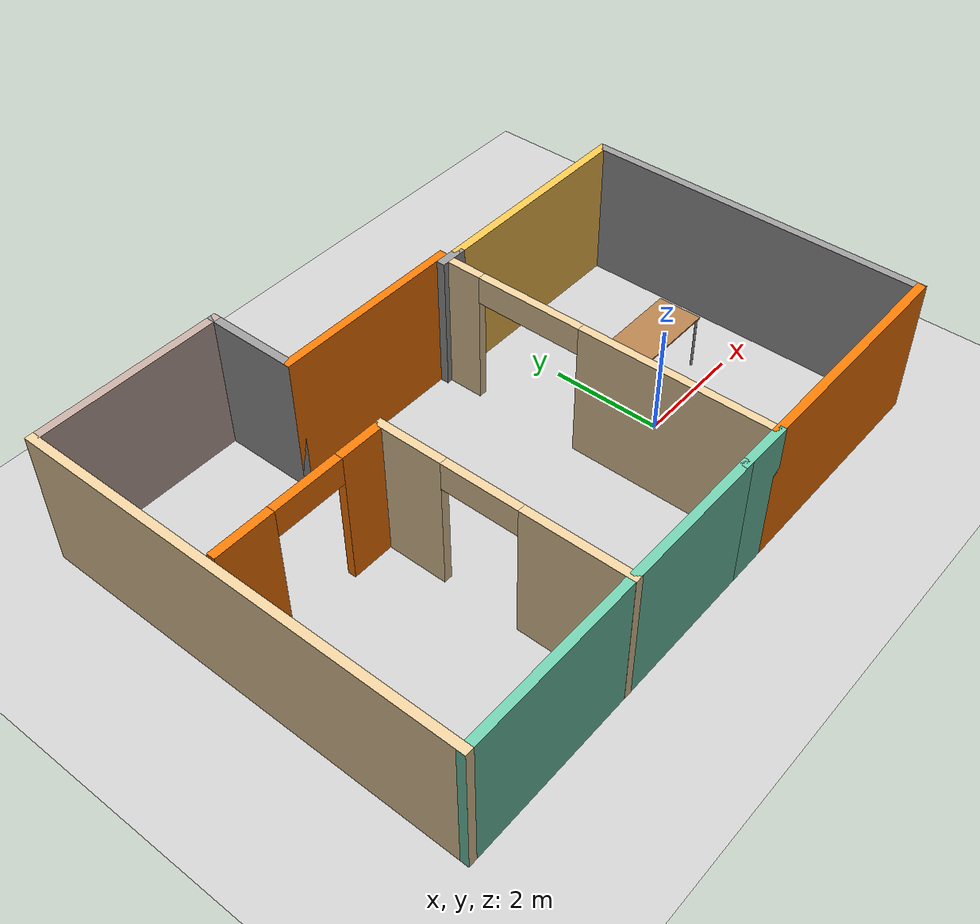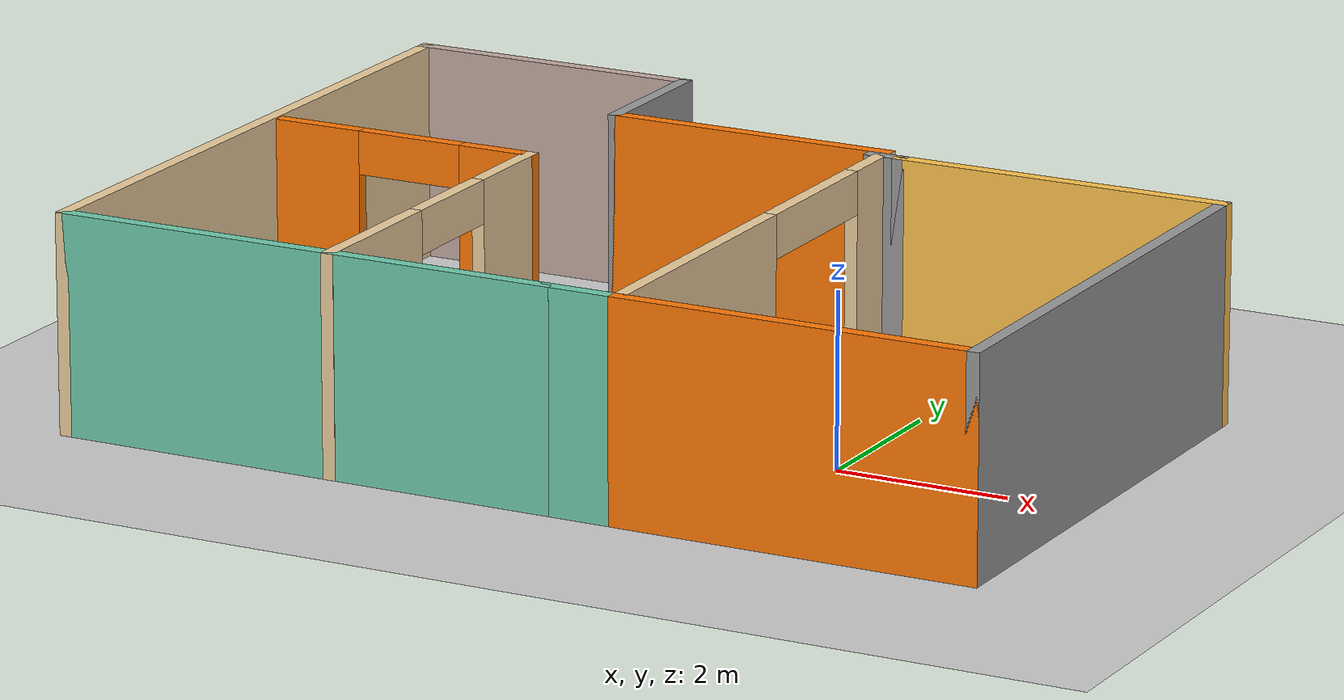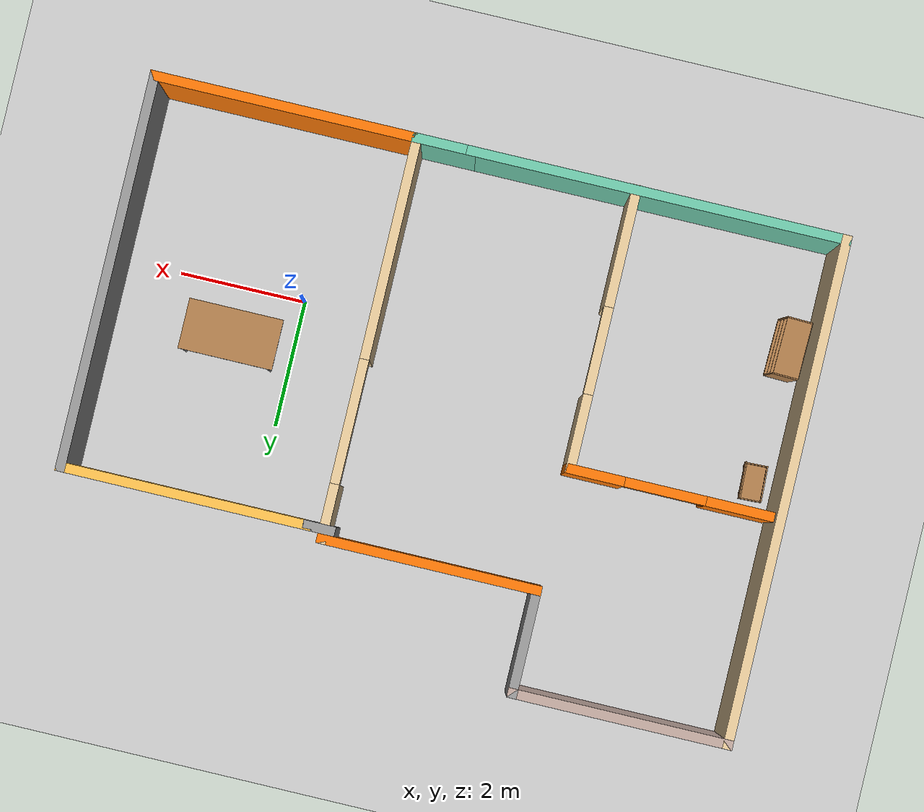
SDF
<sdf version="1.6">
 <world name="default">
  <light name="sun" type="directional">
   <pose>0 0 10 0 -0 0</pose>
   <diffuse>0.8 0.8 0.8 1</diffuse>
   <specular>0.2 0.2 0.2 1</specular>
   <attenuation>
    <range>1000</range>
    <constant>0.9</constant>
    <linear>0.01</linear>
    <quadratic>0.001</quadratic>
   </attenuation>
   <direction>-0.5 0.1 -0.9</direction>
  </light>
  <model name="ground_plane">
   <static>1</static>
   <link name="link">
    <collision name="collision">
     <geometry><plane><normal>0 0 1</normal><size>100 100</size></plane></geometry>
     <surface>
      <contact><collide_bitmask>65535</collide_bitmask></contact>
      <friction><ode><mu>100</mu><mu2>50</mu2></ode></friction>
     </surface>
    </collision>
    <visual name="visual">
     <cast_shadows>0</cast_shadows>
     <geometry><plane><normal>0 0 1</normal><size>100 100</size></plane></geometry>
     <material>
      <script><uri>file://media/materials/scripts/gazebo.material</uri><name>Gazebo/Grey</name></script>
     </material>
    </visual>
   </link>
  </model>
  <gravity>0 0 -9.8</gravity>
  <magnetic_field>6e-06 2.3e-05 -4.2e-05</magnetic_field>
  <atmosphere type="adiabatic"/>
  <physics name="default_physics" default="0" type="ode">
   <max_step_size>0.001</max_step_size>
   <real_time_factor>1</real_time_factor>
   <real_time_update_rate>1000</real_time_update_rate>
  </physics>
  <scene><ambient>0.4 0.4 0.4 1</ambient><background>0.7 0.7 0.7 1</background><shadows>1</shadows></scene>
  <spherical_coordinates>
   <surface_model>EARTH_WGS84</surface_model>
   <latitude_deg>0</latitude_deg>
   <longitude_deg>0</longitude_deg>
   <elevation>0</elevation>
   <heading_deg>0</heading_deg>
  </spherical_coordinates>
  <model name="building1">
   <pose>-2.48886 1.20939 0 0 -0 0</pose>
   <link name="Wall_1">
    <collision name="Wall_1_Collision">
     <geometry><box><size>6 0.15 2.5</size></box></geometry>
     <pose>0 0 1.25 0 -0 0</pose>
    </collision>
    <visual name="Wall_1_Visual">
     <pose>0 0 1.25 0 -0 0</pose>
     <geometry><box><size>6 0.15 2.5</size></box></geometry>
     <material>
      <script><uri>file://media/materials/scripts/gazebo.material</uri><name>Gazebo/Grey</name></script>
      <ambient>0.435294 0.796078 0.67451 1</ambient>
     </material>
     <meta><layer>0</layer></meta>
    </visual>
    <pose>-2.475 -3.92334 0 0 -0 3.14159</pose>
   </link>
   <link name="Wall_10">
    <collision name="Wall_10_Collision">
     <geometry><box><size>3.5 0.15 2.5</size></box></geometry>
     <pose>0 0 1.25 0 -0 0</pose>
    </collision>
    <visual name="Wall_10_Visual">
     <pose>0 0 1.25 0 -0 0</pose>
     <geometry><box><size>3.5 0.15 2.5</size></box></geometry>
     <material>
      <script><uri>file://media/materials/scripts/gazebo.material</uri><name>Gazebo/Grey</name></script>
      <ambient>0.996078 0.47451 0.0196078 1</ambient>
     </material>
     <meta><layer>0</layer></meta>
    </visual>
    <pose>-0.375 2.32666 0 0 -0 0</pose>
   </link>
   <link name="Wall_11">
    <pose>1.3 -0.723336 0 0 0 -1.5708</pose>
    <visual name="Wall_11_Visual_0">
     <pose>-2.65935 0 1.25 0 -0 0</pose>
     <geometry><box><size>0.931308 0.15 2.5</size></box></geometry>
     <material>
      <script><uri>file://media/materials/scripts/gazebo.material</uri><name>Gazebo/Grey</name></script>
      <ambient>0.921569 0.807843 0.615686 1</ambient>
     </material>
     <meta><layer>0</layer></meta>
    </visual>
    <collision name="Wall_11_Collision_0">
     <geometry><box><size>0.931308 0.15 2.5</size></box></geometry>
     <pose>-2.65935 0 1.25 0 -0 0</pose>
    </collision>
    <visual name="Wall_11_Visual_1">
     <pose>1.43569 0 1.25 0 -0 0</pose>
     <geometry><box><size>3.37862 0.15 2.5</size></box></geometry>
     <material>
      <script><uri>file://media/materials/scripts/gazebo.material</uri><name>Gazebo/Grey</name></script>
      <ambient>0.921569 0.807843 0.615686 1</ambient>
     </material>
     <meta><layer>0</layer></meta>
    </visual>
    <collision name="Wall_11_Collision_1">
     <geometry><box><size>3.37862 0.15 2.5</size></box></geometry>
     <pose>1.43569 0 1.25 0 -0 0</pose>
    </collision>
    <visual name="Wall_11_Visual_2">
     <pose>-1.22366 0 2.25 0 -0 0</pose>
     <geometry><box><size>1.94007 0.15 0.5</size></box></geometry>
     <material>
      <script><uri>file://media/materials/scripts/gazebo.material</uri><name>Gazebo/Grey</name></script>
      <ambient>0.921569 0.807843 0.615686 1</ambient>
     </material>
     <meta><layer>0</layer></meta>
    </visual>
    <collision name="Wall_11_Collision_2">
     <geometry><box><size>1.94007 0.15 0.5</size></box></geometry>
     <pose>-1.22366 0 2.25 0 -0 0</pose>
    </collision>
   </link>
   <link name="Wall_13">
    <collision name="Wall_13_Collision">
     <geometry><box><size>1 0.15 2.5</size></box></geometry>
     <pose>0 0 1.25 0 -0 0</pose>
    </collision>
    <visual name="Wall_13_Visual">
     <pose>0 0 1.25 0 -0 0</pose>
     <geometry><box><size>1 0.15 2.5</size></box></geometry>
     <material>
      <script><uri>file://media/materials/scripts/gazebo.material</uri><name>Gazebo/Grey</name></script>
      <ambient>0.435294 0.796078 0.67451 1</ambient>
     </material>
     <meta><layer>0</layer></meta>
    </visual>
    <pose>0.875 -3.92334 0 0 -0 0</pose>
   </link>
   <link name="Wall_15">
    <collision name="Wall_15_Collision">
     <geometry><box><size>4.25 0.15 2.5</size></box></geometry>
     <pose>0 0 1.25 0 -0 0</pose>
    </collision>
    <visual name="Wall_15_Visual">
     <pose>0 0 1.25 0 -0 0</pose>
     <geometry><box><size>4.25 0.15 2.5</size></box></geometry>
     <material>
      <script><uri>file://media/materials/scripts/gazebo.material</uri><name>Gazebo/Grey</name></script>
      <ambient>0.996078 0.47451 0.0196078 1</ambient>
     </material>
     <meta><layer>0</layer></meta>
    </visual>
    <pose>3.35 -3.92334 0 0 -0 0</pose>
   </link>
   <link name="Wall_16">
    <collision name="Wall_16_Collision">
     <geometry><box><size>6.25 0.15 2.5</size></box></geometry>
     <pose>0 0 1.25 0 -0 0</pose>
    </collision>
    <visual name="Wall_16_Visual">
     <pose>0 0 1.25 0 -0 0</pose>
     <geometry><box><size>6.25 0.15 2.5</size></box></geometry>
     <material>
      <script><uri>file://media/materials/scripts/gazebo.material</uri><name>Gazebo/Grey</name></script>
      <ambient>1 1 1 1</ambient>
     </material>
     <meta><layer>0</layer></meta>
    </visual>
    <pose>5.4 -0.873336 0 0 -0 1.5708</pose>
   </link>
   <link name="Wall_17">
    <collision name="Wall_17_Collision">
     <geometry><box><size>4 0.15 2.5</size></box></geometry>
     <pose>0 0 1.25 0 -0 0</pose>
    </collision>
    <visual name="Wall_17_Visual">
     <pose>0 0 1.25 0 -0 0</pose>
     <geometry><box><size>4 0.15 2.5</size></box></geometry>
     <material>
      <script><uri>file://media/materials/scripts/gazebo.material</uri><name>Gazebo/Grey</name></script>
      <ambient>1 0.764706 0.305882 1</ambient>
     </material>
     <meta><layer>0</layer></meta>
    </visual>
    <pose>3.475 2.17666 0 0 -0 3.14159</pose>
   </link>
   <link name="Wall_18">
    <collision name="Wall_18_Collision">
     <geometry><box><size>0.15 0.15 2.5</size></box></geometry>
     <pose>0 0 1.25 0 -0 0</pose>
    </collision>
    <visual name="Wall_18_Visual">
     <pose>0 0 1.25 0 -0 0</pose>
     <geometry><box><size>0.15 0.15 2.5</size></box></geometry>
     <material>
      <script><uri>file://media/materials/scripts/gazebo.material</uri><name>Gazebo/Grey</name></script>
      <ambient>1 1 1 1</ambient>
     </material>
     <meta><layer>0</layer></meta>
    </visual>
    <pose>1.55 2.17666 0 0 -0 0</pose>
   </link>
   <link name="Wall_19">
    <collision name="Wall_19_Collision">
     <geometry><box><size>0.5 0.15 2.5</size></box></geometry>
     <pose>0 0 1.25 0 -0 0</pose>
    </collision>
    <visual name="Wall_19_Visual">
     <pose>0 0 1.25 0 -0 0</pose>
     <geometry><box><size>0.5 0.15 2.5</size></box></geometry>
     <material>
      <script><uri>file://media/materials/scripts/gazebo.material</uri><name>Gazebo/Grey</name></script>
      <ambient>1 1 1 1</ambient>
     </material>
     <meta><layer>0</layer></meta>
    </visual>
    <pose>1.375 2.17666 0 0 -0 3.14159</pose>
   </link>
   <link name="Wall_3">
    <collision name="Wall_3_Collision">
     <geometry><box><size>8 0.15 2.5</size></box></geometry>
     <pose>0 0 1.25 0 -0 0</pose>
    </collision>
    <visual name="Wall_3_Visual">
     <pose>0 0 1.25 0 -0 0</pose>
     <geometry><box><size>8 0.15 2.5</size></box></geometry>
     <material>
      <script><uri>file://media/materials/scripts/gazebo.material</uri><name>Gazebo/Grey</name></script>
      <ambient>0.921569 0.807843 0.615686 1</ambient>
     </material>
     <meta><layer>0</layer></meta>
    </visual>
    <pose>-5.4 0.001664 0 0 -0 1.5708</pose>
   </link>
   <link name="Wall_5">
    <pose>-2.12389 -1.75167 0 0 -0 1.5708</pose>
    <visual name="Wall_5_Visual_0">
     <pose>-1.29797 0 1.25 0 -0 0</pose>
     <geometry><box><size>1.90406 0.15 2.5</size></box></geometry>
     <material>
      <script><uri>file://media/materials/scripts/gazebo.material</uri><name>Gazebo/Grey</name></script>
      <ambient>0.921569 0.807843 0.615686 1</ambient>
     </material>
     <meta><layer>0</layer></meta>
    </visual>
    <collision name="Wall_5_Collision_0">
     <geometry><box><size>1.90406 0.15 2.5</size></box></geometry>
     <pose>-1.29797 0 1.25 0 -0 0</pose>
    </collision>
    <visual name="Wall_5_Visual_1">
     <pose>1.63333 0 1.25 0 -0 0</pose>
     <geometry><box><size>1.23333 0.15 2.5</size></box></geometry>
     <material>
      <script><uri>file://media/materials/scripts/gazebo.material</uri><name>Gazebo/Grey</name></script>
      <ambient>0.921569 0.807843 0.615686 1</ambient>
     </material>
     <meta><layer>0</layer></meta>
    </visual>
    <collision name="Wall_5_Collision_1">
     <geometry><box><size>1.23333 0.15 2.5</size></box></geometry>
     <pose>1.63333 0 1.25 0 -0 0</pose>
    </collision>
    <visual name="Wall_5_Visual_2">
     <pose>0.335363 0 2.25 0 -0 0</pose>
     <geometry><box><size>1.36261 0.15 0.5</size></box></geometry>
     <material>
      <script><uri>file://media/materials/scripts/gazebo.material</uri><name>Gazebo/Grey</name></script>
      <ambient>0.921569 0.807843 0.615686 1</ambient>
     </material>
     <meta><layer>0</layer></meta>
    </visual>
    <collision name="Wall_5_Collision_2">
     <geometry><box><size>1.36261 0.15 0.5</size></box></geometry>
     <pose>0.335363 0 2.25 0 -0 0</pose>
    </collision>
   </link>
   <link name="Wall_6">
    <pose>-3.67389 0.423335 0 0 -0 3.14159</pose>
    <visual name="Wall_6_Visual_0">
     <pose>-1.16562 0 1.25 0 -0 0</pose>
     <geometry><box><size>0.918749 0.15 2.5</size></box></geometry>
     <material>
      <script><uri>file://media/materials/scripts/gazebo.material</uri><name>Gazebo/Grey</name></script>
      <ambient>0.996078 0.47451 0.0196078 1</ambient>
     </material>
     <meta><layer>0</layer></meta>
    </visual>
    <collision name="Wall_6_Collision_0">
     <geometry><box><size>0.918749 0.15 2.5</size></box></geometry>
     <pose>-1.16562 0 1.25 0 -0 0</pose>
    </collision>
    <visual name="Wall_6_Visual_1">
     <pose>1.09442 0 1.25 0 -0 0</pose>
     <geometry><box><size>1.06116 0.15 2.5</size></box></geometry>
     <material>
      <script><uri>file://media/materials/scripts/gazebo.material</uri><name>Gazebo/Grey</name></script>
      <ambient>0.996078 0.47451 0.0196078 1</ambient>
     </material>
     <meta><layer>0</layer></meta>
    </visual>
    <collision name="Wall_6_Collision_1">
     <geometry><box><size>1.06116 0.15 2.5</size></box></geometry>
     <pose>1.09442 0 1.25 0 -0 0</pose>
    </collision>
    <visual name="Wall_6_Visual_2">
     <pose>-0.071206 0 2.25 0 -0 0</pose>
     <geometry><box><size>1.27009 0.15 0.5</size></box></geometry>
     <material>
      <script><uri>file://media/materials/scripts/gazebo.material</uri><name>Gazebo/Grey</name></script>
      <ambient>0.996078 0.47451 0.0196078 1</ambient>
     </material>
     <meta><layer>0</layer></meta>
    </visual>
    <collision name="Wall_6_Collision_2">
     <geometry><box><size>1.27009 0.15 0.5</size></box></geometry>
     <pose>-0.071206 0 2.25 0 -0 0</pose>
    </collision>
   </link>
   <link name="Wall_8">
    <collision name="Wall_8_Collision">
     <geometry><box><size>3.5 0.15 2.5</size></box></geometry>
     <pose>0 0 1.25 0 -0 0</pose>
    </collision>
    <visual name="Wall_8_Visual">
     <pose>0 0 1.25 0 -0 0</pose>
     <geometry><box><size>3.5 0.15 2.5</size></box></geometry>
     <material>
      <script><uri>file://media/materials/scripts/gazebo.material</uri><name>Gazebo/Grey</name></script>
      <ambient>0.760784 0.662745 0.627451 1</ambient>
     </material>
     <meta><layer>0</layer></meta>
    </visual>
    <pose>-3.725 3.92666 0 0 -0 0</pose>
   </link>
   <link name="Wall_9">
    <collision name="Wall_9_Collision">
     <geometry><box><size>1.75 0.15 2.5</size></box></geometry>
     <pose>0 0 1.25 0 -0 0</pose>
    </collision>
    <visual name="Wall_9_Visual">
     <pose>0 0 1.25 0 -0 0</pose>
     <geometry><box><size>1.75 0.15 2.5</size></box></geometry>
     <material>
      <script><uri>file://media/materials/scripts/gazebo.material</uri><name>Gazebo/Grey</name></script>
      <ambient>1 1 1 1</ambient>
     </material>
     <meta><layer>0</layer></meta>
    </visual>
    <pose>-2.05 3.12666 0 0 0 -1.5708</pose>
   </link>
   <static>1</static>
  </model>
  <model name="table">
   <static>1</static>
   <link name="link">
    <collision name="surface">
     <pose>0 0 1 0 -0 0</pose>
     <geometry><box><size>1.5 0.8 0.03</size></box></geometry>
     <surface><friction><ode><mu>0.6</mu><mu2>0.6</mu2></ode></friction></surface>
    </collision>
    <visual name="visual1">
     <pose>0 0 1 0 -0 0</pose>
     <geometry><box><size>1.5 0.8 0.03</size></box></geometry>
     <material>
      <script><uri>file://media/materials/scripts/gazebo.material</uri><name>Gazebo/Wood</name></script>
     </material>
    </visual>
    <collision name="front_left_leg">
     <pose>0.68 0.38 0.5 0 -0 0</pose>
     <geometry><cylinder><radius>0.02</radius><length>1</length></cylinder></geometry>
    </collision>
    <visual name="front_left_leg">
     <pose>0.68 0.38 0.5 0 -0 0</pose>
     <geometry><cylinder><radius>0.02</radius><length>1</length></cylinder></geometry>
     <material>
      <script><uri>file://media/materials/scripts/gazebo.material</uri><name>Gazebo/Grey</name></script>
     </material>
    </visual>
    <collision name="front_right_leg">
     <pose>0.68 -0.38 0.5 0 -0 0</pose>
     <geometry><cylinder><radius>0.02</radius><length>1</length></cylinder></geometry>
    </collision>
    <visual name="front_right_leg">
     <pose>0.68 -0.38 0.5 0 -0 0</pose>
     <geometry><cylinder><radius>0.02</radius><length>1</length></cylinder></geometry>
     <material>
      <script><uri>file://media/materials/scripts/gazebo.material</uri><name>Gazebo/Grey</name></script>
     </material>
    </visual>
    <collision name="back_right_leg">
     <pose>-0.68 -0.38 0.5 0 -0 0</pose>
     <geometry><cylinder><radius>0.02</radius><length>1</length></cylinder></geometry>
    </collision>
    <visual name="back_right_leg">
     <pose>-0.68 -0.38 0.5 0 -0 0</pose>
     <geometry><cylinder><radius>0.02</radius><length>1</length></cylinder></geometry>
     <material>
      <script><uri>file://media/materials/scripts/gazebo.material</uri><name>Gazebo/Grey</name></script>
     </material>
    </visual>
    <collision name="back_left_leg">
     <pose>-0.68 0.38 0.5 0 -0 0</pose>
     <geometry><cylinder><radius>0.02</radius><length>1</length></cylinder></geometry>
    </collision>
    <visual name="back_left_leg">
     <pose>-0.68 0.38 0.5 0 -0 0</pose>
     <geometry><cylinder><radius>0.02</radius><length>1</length></cylinder></geometry>
     <material>
      <script><uri>file://media/materials/scripts/gazebo.material</uri><name>Gazebo/Grey</name></script>
     </material>
    </visual>
   </link>
   <pose>0.963641 0.785159 0 0 -0 0</pose>
  </model>
  <model name="wooden_case">
   <link name="base">
    <pose>0 0 0.024 0 -0 0</pose>
    <inertial>
     <pose>-0.022184 0 0.171592 0 -0 0</pose>
     <mass>3.96264</mass>
     <inertia>
      <ixx>0.213536</ixx>
      <ixy>0</ixy>
      <ixz>0.000779377</ixz>
      <iyy>0.0708943</iyy>
      <iyz>0</iyz>
      <izz>0.154604</izz>
     </inertia>
    </inertial>
    <collision name="collision_back">
     <pose>-0.053975 0 0.1778 0 -0 0</pose>
     <geometry><box><size>0.01905 0.5461 0.3175</size></box></geometry>
     <surface>
      <contact>
       <poissons_ratio>0.347</poissons_ratio>
       <elastic_modulus>8.8e+09</elastic_modulus>
       <ode><kp>100000</kp><kd>100</kd><max_vel>100</max_vel><min_depth>0.001</min_depth></ode>
      </contact>
      <friction>
       <torsional>
        <coefficient>1</coefficient>
        <use_patch_radius>0</use_patch_radius>
        <surface_radius>0.01</surface_radius>
       </torsional>
      </friction>
     </surface>
    </collision>
    <visual name="visual_back">
     <pose>-0.053975 0 0.1778 0 -0 0</pose>
     <geometry><box><size>0.01905 0.5461 0.3175</size></box></geometry>
     <material>
      <script><uri>file://media/materials/scripts/gazebo.material</uri><name>Gazebo/Wood</name></script>
     </material>
    </visual>
    <collision name="collision_bottom">
     <pose>0 0 0.009525 0 -0 0</pose>
     <geometry><box><size>0.127 0.5842 0.01905</size></box></geometry>
     <surface>
      <contact>
       <poissons_ratio>0.347</poissons_ratio>
       <elastic_modulus>8.8e+09</elastic_modulus>
       <ode><kp>100000</kp><kd>100</kd><max_vel>100</max_vel><min_depth>0.001</min_depth></ode>
      </contact>
      <friction>
       <torsional>
        <coefficient>1</coefficient>
        <use_patch_radius>0</use_patch_radius>
        <surface_radius>0.01</surface_radius>
       </torsional>
      </friction>
     </surface>
    </collision>
    <visual name="visual_bottom">
     <pose>0 0 0.009525 0 -0 0</pose>
     <geometry><box><size>0.127 0.5842 0.01905</size></box></geometry>
     <material>
      <script><uri>file://media/materials/scripts/gazebo.material</uri><name>Gazebo/Wood</name></script>
     </material>
    </visual>
    <collision name="collision_top">
     <pose>0 0 0.346075 0 -0 0</pose>
     <geometry><box><size>0.127 0.5842 0.01905</size></box></geometry>
     <surface>
      <contact>
       <poissons_ratio>0.347</poissons_ratio>
       <elastic_modulus>8.8e+09</elastic_modulus>
       <ode><kp>100000</kp><kd>100</kd><max_vel>100</max_vel><min_depth>0.001</min_depth></ode>
      </contact>
      <friction>
       <torsional>
        <coefficient>1</coefficient>
        <use_patch_radius>0</use_patch_radius>
        <surface_radius>0.01</surface_radius>
       </torsional>
      </friction>
     </surface>
    </collision>
    <visual name="visual_top">
     <pose>0 0 0.346075 0 -0 0</pose>
     <geometry><box><size>0.127 0.5842 0.01905</size></box></geometry>
     <material>
      <script><uri>file://media/materials/scripts/gazebo.material</uri><name>Gazebo/Wood</name></script>
     </material>
    </visual>
    <collision name="collision_left">
     <pose>0 -0.282575 0.1778 0 -0 0</pose>
     <geometry><box><size>0.127 0.01905 0.3175</size></box></geometry>
     <surface>
      <contact>
       <poissons_ratio>0.347</poissons_ratio>
       <elastic_modulus>8.8e+09</elastic_modulus>
       <ode><kp>100000</kp><kd>100</kd><max_vel>100</max_vel><min_depth>0.001</min_depth></ode>
      </contact>
      <friction>
       <torsional>
        <coefficient>1</coefficient>
        <use_patch_radius>0</use_patch_radius>
        <surface_radius>0.01</surface_radius>
       </torsional>
      </friction>
     </surface>
    </collision>
    <visual name="visual_left">
     <pose>0 -0.282575 0.1778 0 -0 0</pose>
     <geometry><box><size>0.127 0.01905 0.3175</size></box></geometry>
     <material>
      <script><uri>file://media/materials/scripts/gazebo.material</uri><name>Gazebo/Wood</name></script>
     </material>
    </visual>
    <collision name="collision_right">
     <pose>0 0.282575 0.1778 0 -0 0</pose>
     <geometry><box><size>0.127 0.01905 0.3175</size></box></geometry>
     <surface>
      <contact>
       <poissons_ratio>0.347</poissons_ratio>
       <elastic_modulus>8.8e+09</elastic_modulus>
       <ode><kp>100000</kp><kd>100</kd><max_vel>100</max_vel><min_depth>0.001</min_depth></ode>
      </contact>
      <friction>
       <torsional>
        <coefficient>1</coefficient>
        <use_patch_radius>0</use_patch_radius>
        <surface_radius>0.01</surface_radius>
       </torsional>
      </friction>
     </surface>
    </collision>
    <visual name="visual_right">
     <pose>0 0.282575 0.1778 0 -0 0</pose>
     <geometry><box><size>0.127 0.01905 0.3175</size></box></geometry>
     <material>
      <script><uri>file://media/materials/scripts/gazebo.material</uri><name>Gazebo/Wood</name></script>
     </material>
    </visual>
    <collision name="collision_block_left">
     <pose>0.0095 -0.2151 -0.012 0 -0 0</pose>
     <geometry><box><size>0.108 0.05 0.024</size></box></geometry>
     <surface>
      <contact>
       <poissons_ratio>0.347</poissons_ratio>
       <elastic_modulus>8.8e+09</elastic_modulus>
       <ode><kp>100000</kp><kd>100</kd><max_vel>100</max_vel><min_depth>0.001</min_depth></ode>
      </contact>
      <friction>
       <torsional>
        <coefficient>1</coefficient>
        <use_patch_radius>0</use_patch_radius>
        <surface_radius>0.01</surface_radius>
       </torsional>
      </friction>
     </surface>
    </collision>
    <visual name="visual_block_left">
     <pose>0.0095 -0.2151 -0.012 0 -0 0</pose>
     <geometry><box><size>0.108 0.05 0.024</size></box></geometry>
     <material>
      <script><uri>file://media/materials/scripts/gazebo.material</uri><name>Gazebo/Wood</name></script>
     </material>
    </visual>
    <collision name="collision_block_right">
     <pose>0.0095 0.2151 -0.012 0 -0 0</pose>
     <geometry><box><size>0.108 0.05 0.024</size></box></geometry>
     <surface>
      <contact>
       <poissons_ratio>0.347</poissons_ratio>
       <elastic_modulus>8.8e+09</elastic_modulus>
       <ode><kp>100000</kp><kd>100</kd><max_vel>100</max_vel><min_depth>0.001</min_depth></ode>
      </contact>
      <friction>
       <torsional>
        <coefficient>1</coefficient>
        <use_patch_radius>0</use_patch_radius>
        <surface_radius>0.01</surface_radius>
       </torsional>
      </friction>
     </surface>
    </collision>
    <visual name="visual_block_right">
     <pose>0.0095 0.2151 -0.012 0 -0 0</pose>
     <geometry><box><size>0.108 0.05 0.024</size></box></geometry>
     <material>
      <script><uri>file://media/materials/scripts/gazebo.material</uri><name>Gazebo/Wood</name></script>
     </material>
    </visual>
   </link>
   <link name="lid">
    <pose>0.243775 0 0.009525 0 -0 0</pose>
    <inertial>
     <mass>1.97874</mass>
     <inertia>
      <ixx>0.0563367</ixx>
      <ixy>0</ixy>
      <ixz>0</ixz>
      <iyy>0.020911</iyy>
      <iyz>0</iyz>
      <izz>0.0771281</izz>
     </inertia>
    </inertial>
    <collision name="collision">
     <geometry><box><size>0.3556 0.5842 0.01905</size></box></geometry>
     <surface>
      <contact>
       <poissons_ratio>0.347</poissons_ratio>
       <elastic_modulus>8.8e+09</elastic_modulus>
       <ode><kp>100000</kp><kd>100</kd><max_vel>100</max_vel><min_depth>0.001</min_depth></ode>
      </contact>
      <friction>
       <torsional>
        <coefficient>1</coefficient>
        <use_patch_radius>0</use_patch_radius>
        <surface_radius>0.01</surface_radius>
       </torsional>
      </friction>
     </surface>
    </collision>
    <visual name="visual">
     <geometry><box><size>0.3556 0.5842 0.01905</size></box></geometry>
     <material>
      <script><uri>file://media/materials/scripts/gazebo.material</uri><name>Gazebo/Wood</name></script>
     </material>
    </visual>
    <visual name="tee_nut_1">
     <pose>0.122 -0.216 0 0 -0 0</pose>
     <geometry><cylinder><radius>0.00635</radius><length>0.0192405</length></cylinder></geometry>
     <material>
      <script><uri>file://media/materials/scripts/gazebo.material</uri><name>Gazebo/Grey</name></script>
     </material>
    </visual>
    <visual name="tee_nut_2">
     <pose>0.122 -0.088 0 0 -0 0</pose>
     <geometry><cylinder><radius>0.00635</radius><length>0.0192405</length></cylinder></geometry>
     <material>
      <script><uri>file://media/materials/scripts/gazebo.material</uri><name>Gazebo/Grey</name></script>
     </material>
    </visual>
    <visual name="tee_nut_3">
     <pose>0.122 0.088 0 0 -0 0</pose>
     <geometry><cylinder><radius>0.00635</radius><length>0.0192405</length></cylinder></geometry>
     <material>
      <script><uri>file://media/materials/scripts/gazebo.material</uri><name>Gazebo/Grey</name></script>
     </material>
    </visual>
    <visual name="tee_nut_4">
     <pose>0.122 0.216 0 0 -0 0</pose>
     <geometry><cylinder><radius>0.00635</radius><length>0.0192405</length></cylinder></geometry>
     <material>
      <script><uri>file://media/materials/scripts/gazebo.material</uri><name>Gazebo/Grey</name></script>
     </material>
    </visual>
   </link>
   <joint name="lid_hinge" type="revolute">
    <pose>-0.1778 0 0.01905 0 -0 0</pose>
    <parent>base</parent>
    <child>lid</child>
    <axis>
     <xyz>0 1 0</xyz>
     <limit><upper>0.523599</upper><lower>-1.5708</lower></limit>
     <use_parent_model_frame>0</use_parent_model_frame>
     <dynamics><spring_reference>0</spring_reference><spring_stiffness>0</spring_stiffness></dynamics>
    </axis>
   </joint>
   <pose>-7.3126 1.12986 0.06247 0 -1.57079 0.039881</pose>
  </model>
  <model name="bookshelf">
   <static>1</static>
   <link name="link">
    <inertial><mass>1</mass></inertial>
    <collision name="back">
     <pose>0 0.005 0.6 0 -0 0</pose>
     <geometry><box><size>0.9 0.01 1.2</size></box></geometry>
    </collision>
    <visual name="visual1">
     <pose>0 0.005 0.6 0 -0 0</pose>
     <geometry><box><size>0.9 0.01 1.2</size></box></geometry>
     <material>
      <script><uri>file://media/materials/scripts/gazebo.material</uri><name>Gazebo/Wood</name></script>
     </material>
    </visual>
    <collision name="left_side">
     <pose>0.45 -0.195 0.6 0 -0 0</pose>
     <geometry><box><size>0.02 0.4 1.2</size></box></geometry>
    </collision>
    <visual name="visual2">
     <pose>0.45 -0.195 0.6 0 -0 0</pose>
     <geometry><box><size>0.02 0.4 1.2</size></box></geometry>
     <material>
      <script><uri>file://media/materials/scripts/gazebo.material</uri><name>Gazebo/Wood</name></script>
     </material>
    </visual>
    <collision name="right_side">
     <pose>-0.45 -0.195 0.6 0 -0 0</pose>
     <geometry><box><size>0.02 0.4 1.2</size></box></geometry>
    </collision>
    <visual name="visual3">
     <pose>-0.45 -0.195 0.6 0 -0 0</pose>
     <geometry><box><size>0.02 0.4 1.2</size></box></geometry>
     <material>
      <script><uri>file://media/materials/scripts/gazebo.material</uri><name>Gazebo/Wood</name></script>
     </material>
    </visual>
    <collision name="bottom">
     <pose>0 -0.195 0.03 0 -0 0</pose>
     <geometry><box><size>0.88 0.4 0.06</size></box></geometry>
    </collision>
    <visual name="visual4">
     <pose>0 -0.195 0.03 0 -0 0</pose>
     <geometry><box><size>0.88 0.4 0.06</size></box></geometry>
     <material>
      <script><uri>file://media/materials/scripts/gazebo.material</uri><name>Gazebo/Wood</name></script>
     </material>
    </visual>
    <collision name="top">
     <pose>0 -0.195 1.19 0 -0 0</pose>
     <geometry><box><size>0.88 0.4 0.02</size></box></geometry>
    </collision>
    <visual name="visual5">
     <pose>0 -0.195 1.19 0 -0 0</pose>
     <geometry><box><size>0.88 0.4 0.02</size></box></geometry>
     <material>
      <script><uri>file://media/materials/scripts/gazebo.material</uri><name>Gazebo/Wood</name></script>
     </material>
    </visual>
    <collision name="low_shelf">
     <pose>0 -0.195 0.43 0 -0 0</pose>
     <geometry><box><size>0.88 0.4 0.02</size></box></geometry>
    </collision>
    <visual name="visual6">
     <pose>0 -0.195 0.43 0 -0 0</pose>
     <geometry><box><size>0.88 0.4 0.02</size></box></geometry>
     <material>
      <script><uri>file://media/materials/scripts/gazebo.material</uri><name>Gazebo/Wood</name></script>
     </material>
    </visual>
    <collision name="high_shelf">
     <pose>0 -0.195 0.8 0 -0 0</pose>
     <geometry><box><size>0.88 0.4 0.02</size></box></geometry>
    </collision>
    <visual name="visual7">
     <pose>0 -0.195 0.8 0 -0 0</pose>
     <geometry><box><size>0.88 0.4 0.02</size></box></geometry>
     <material>
      <script><uri>file://media/materials/scripts/gazebo.material</uri><name>Gazebo/Wood</name></script>
     </material>
    </visual>
   </link>
   <pose>-7.68462 -1.00032 0 -0.056353 -0.001592 1.54258</pose>
  </model>
 </world>
</sdf>
